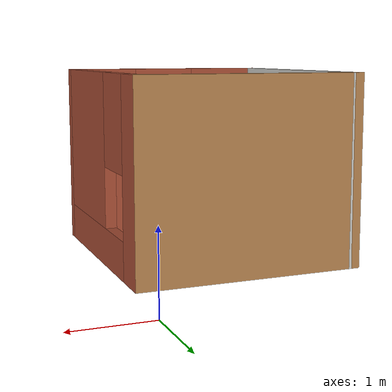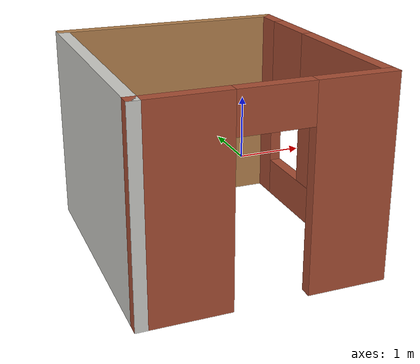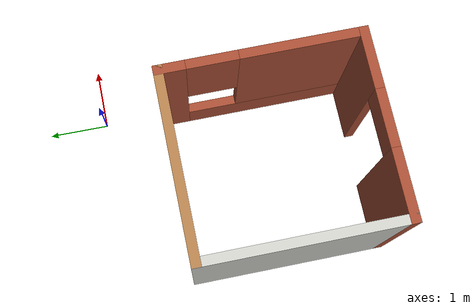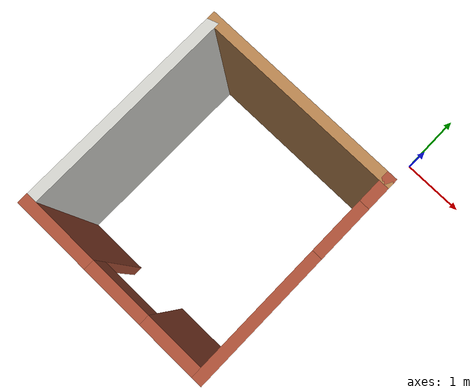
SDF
<?xml version='1.0'?>
<sdf version='1.7'>
  <model name='test_world'>
    <pose>-1.5225 -2.1125 0 0 -0 0</pose>
    <link name='Wall_0'>
      <collision name='Wall_0_Collision'>
        <geometry>
          <box>
            <size>3.25 0.15 2.5</size>
          </box>
        </geometry>
        <pose>0 0 1.25 0 -0 0</pose>
      </collision>
      <visual name='Wall_0_Visual'>
        <pose>0 0 1.25 0 -0 0</pose>
        <geometry>
          <box>
            <size>3.25 0.15 2.5</size>
          </box>
        </geometry>
        <material>
          <script>
            <uri>file://media/materials/scripts/gazebo.material</uri>
            <name>Gazebo/CeilingTiled</name>
          </script>
          <ambient>1 1 1 1</ambient>
        </material>
        <meta>
          <layer>0</layer>
        </meta>
      </visual>
      <pose>-1.4475 -0.4875 0 0 -0 1.5708</pose>
    </link>
    <link name='Wall_1'>
      <collision name='Wall_1_Collision'>
        <geometry>
          <box>
            <size>3 0.15 2.5</size>
          </box>
        </geometry>
        <pose>0 0 1.25 0 -0 0</pose>
      </collision>
      <visual name='Wall_1_Visual'>
        <pose>0 0 1.25 0 -0 0</pose>
        <geometry>
          <box>
            <size>3 0.15 2.5</size>
          </box>
        </geometry>
        <material>
          <script>
            <uri>file://media/materials/scripts/gazebo.material</uri>
            <name>Gazebo/Wood</name>
          </script>
          <ambient>1 1 1 1</ambient>
        </material>
        <meta>
          <layer>0</layer>
        </meta>
      </visual>
      <pose>-0.0225 1.0625 0 0 -0 0</pose>
    </link>
    <link name='Wall_2'>
      <pose>1.4025 -0.4875 0 0 -0 -1.5708</pose>
      <visual name='Wall_2_Visual_0'>
        <pose>-1.3825 0 1.25 0 -0 0</pose>
        <geometry>
          <box>
            <size>0.485 0.15 2.5</size>
          </box>
        </geometry>
        <material>
          <script>
            <uri>file://media/materials/scripts/gazebo.material</uri>
            <name>Gazebo/Bricks</name>
          </script>
          <ambient>1 1 1 1</ambient>
        </material>
        <meta>
          <layer>0</layer>
        </meta>
      </visual>
      <collision name='Wall_2_Collision_0'>
        <geometry>
          <box>
            <size>0.485 0.15 2.5</size>
          </box>
        </geometry>
        <pose>-1.3825 0 1.25 0 -0 0</pose>
      </collision>
      <visual name='Wall_2_Visual_1'>
        <pose>0.2425 0 0.25 0 -0 0</pose>
        <geometry>
          <box>
            <size>2.765 0.15 0.5</size>
          </box>
        </geometry>
        <material>
          <script>
            <uri>file://media/materials/scripts/gazebo.material</uri>
            <name>Gazebo/Bricks</name>
          </script>
          <ambient>1 1 1 1</ambient>
        </material>
        <meta>
          <layer>0</layer>
        </meta>
      </visual>
      <collision name='Wall_2_Collision_1'>
        <geometry>
          <box>
            <size>2.765 0.15 0.5</size>
          </box>
        </geometry>
        <pose>0.2425 0 0.25 0 -0 0</pose>
      </collision>
      <visual name='Wall_2_Visual_2'>
        <pose>0.6425 0 1.5 0 -0 0</pose>
        <geometry>
          <box>
            <size>1.965 0.15 2</size>
          </box>
        </geometry>
        <material>
          <script>
            <uri>file://media/materials/scripts/gazebo.material</uri>
            <name>Gazebo/Bricks</name>
          </script>
          <ambient>1 1 1 1</ambient>
        </material>
        <meta>
          <layer>0</layer>
        </meta>
      </visual>
      <collision name='Wall_2_Collision_2'>
        <geometry>
          <box>
            <size>1.965 0.15 2</size>
          </box>
        </geometry>
        <pose>0.6425 0 1.5 0 -0 0</pose>
      </collision>
      <visual name='Wall_2_Visual_3'>
        <pose>-0.74 0 1.9 0 -0 0</pose>
        <geometry>
          <box>
            <size>0.8 0.15 1.2</size>
          </box>
        </geometry>
        <material>
          <script>
            <uri>file://media/materials/scripts/gazebo.material</uri>
            <name>Gazebo/Bricks</name>
          </script>
          <ambient>1 1 1 1</ambient>
        </material>
        <meta>
          <layer>0</layer>
        </meta>
      </visual>
      <collision name='Wall_2_Collision_3'>
        <geometry>
          <box>
            <size>0.8 0.15 1.2</size>
          </box>
        </geometry>
        <pose>-0.74 0 1.9 0 -0 0</pose>
      </collision>
    </link>
    <link name='Wall_3'>
      <pose>-0.0225 -2.0375 0 0 -0 3.14159</pose>
      <visual name='Wall_3_Visual_0'>
        <pose>-1.0075 0 1.25 0 -0 0</pose>
        <geometry>
          <box>
            <size>0.985 0.15 2.5</size>
          </box>
        </geometry>
        <material>
          <script>
            <uri>file://media/materials/scripts/gazebo.material</uri>
            <name>Gazebo/Bricks</name>
          </script>
          <ambient>1 1 1 1</ambient>
        </material>
        <meta>
          <layer>0</layer>
        </meta>
      </visual>
      <collision name='Wall_3_Collision_0'>
        <geometry>
          <box>
            <size>0.985 0.15 2.5</size>
          </box>
        </geometry>
        <pose>-1.0075 0 1.25 0 -0 0</pose>
      </collision>
      <visual name='Wall_3_Visual_1'>
        <pose>0.9425 0 1.25 0 -0 0</pose>
        <geometry>
          <box>
            <size>1.115 0.15 2.5</size>
          </box>
        </geometry>
        <material>
          <script>
            <uri>file://media/materials/scripts/gazebo.material</uri>
            <name>Gazebo/Bricks</name>
          </script>
          <ambient>1 1 1 1</ambient>
        </material>
        <meta>
          <layer>0</layer>
        </meta>
      </visual>
      <collision name='Wall_3_Collision_1'>
        <geometry>
          <box>
            <size>1.115 0.15 2.5</size>
          </box>
        </geometry>
        <pose>0.9425 0 1.25 0 -0 0</pose>
      </collision>
      <visual name='Wall_3_Visual_2'>
        <pose>-0.065 0 2.25 0 -0 0</pose>
        <geometry>
          <box>
            <size>0.9 0.15 0.5</size>
          </box>
        </geometry>
        <material>
          <script>
            <uri>file://media/materials/scripts/gazebo.material</uri>
            <name>Gazebo/Bricks</name>
          </script>
          <ambient>1 1 1 1</ambient>
        </material>
        <meta>
          <layer>0</layer>
        </meta>
      </visual>
      <collision name='Wall_3_Collision_2'>
        <geometry>
          <box>
            <size>0.9 0.15 0.5</size>
          </box>
        </geometry>
        <pose>-0.065 0 2.25 0 -0 0</pose>
      </collision>
    </link>
    <static>1</static>
  </model>
</sdf>
